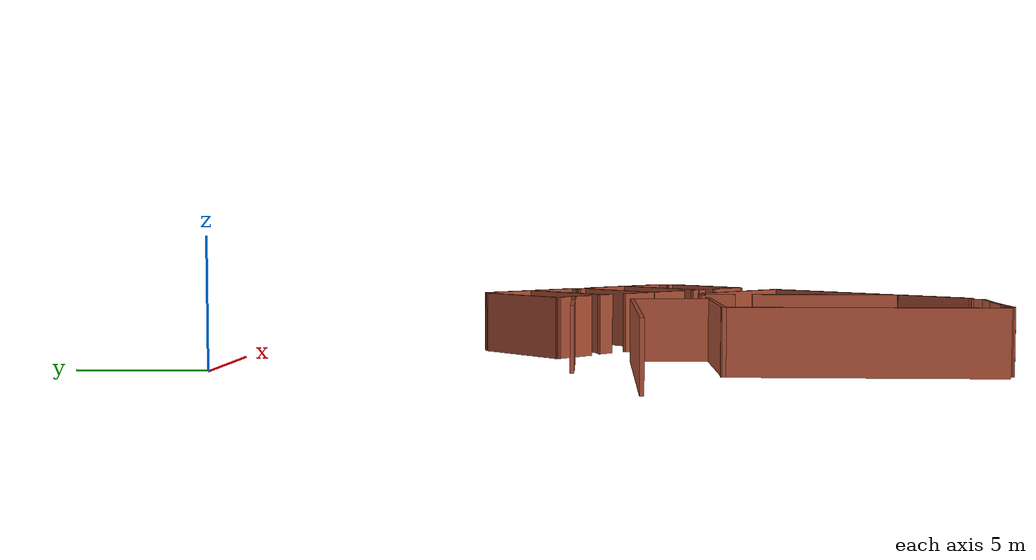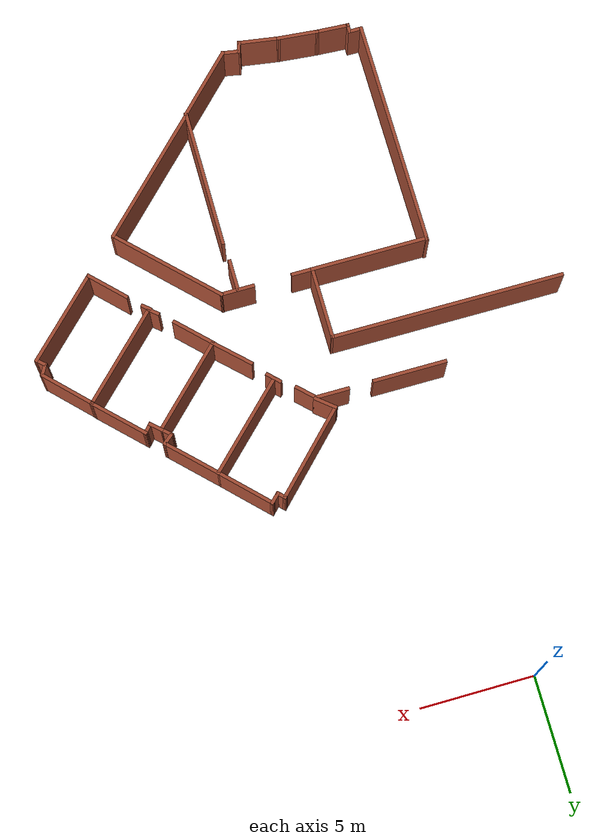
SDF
<?xml version='1.0'?>
<sdf version='1.7'>
  <model name='TI_n1'>
    <pose>5.33519 -14.8646 0 0 -0 0</pose>
    <link name='Wall_0'>
      <collision name='Wall_0_Collision'>
        <geometry>
          <box>
            <size>3.25 0.15 2.5</size>
          </box>
        </geometry>
        <pose>0 0 1.25 0 -0 0</pose>
      </collision>
      <visual name='Wall_0_Visual'>
        <pose>0 0 1.25 0 -0 0</pose>
        <geometry>
          <box>
            <size>3.25 0.15 2.5</size>
          </box>
        </geometry>
        <material>
          <script>
            <uri>file://media/materials/scripts/gazebo.material</uri>
            <name>Gazebo/Bricks</name>
          </script>
          <ambient>1 1 1 1</ambient>
        </material>
        <meta>
          <layer>0</layer>
        </meta>
      </visual>
      <pose>-3.79554 1.40085 0 0 -0 0</pose>
    </link>
    <link name='Wall_10'>
      <collision name='Wall_10_Collision'>
        <geometry>
          <box>
            <size>1.07285 0.15 2.5</size>
          </box>
        </geometry>
        <pose>0 0 1.25 0 -0 0</pose>
      </collision>
      <visual name='Wall_10_Visual'>
        <pose>0 0 1.25 0 -0 0</pose>
        <geometry>
          <box>
            <size>1.07285 0.15 2.5</size>
          </box>
        </geometry>
        <material>
          <script>
            <uri>file://media/materials/scripts/gazebo.material</uri>
            <name>Gazebo/Bricks</name>
          </script>
          <ambient>1 1 1 1</ambient>
        </material>
        <meta>
          <layer>0</layer>
        </meta>
      </visual>
      <pose>0.639444 1.09915 0 0 -0 -0.771818</pose>
    </link>
    <link name='Wall_12'>
      <collision name='Wall_12_Collision'>
        <geometry>
          <box>
            <size>0.75 0.15 2.5</size>
          </box>
        </geometry>
        <pose>0 0 1.25 0 -0 0</pose>
      </collision>
      <visual name='Wall_12_Visual'>
        <pose>0 0 1.25 0 -0 0</pose>
        <geometry>
          <box>
            <size>0.75 0.15 2.5</size>
          </box>
        </geometry>
        <material>
          <script>
            <uri>file://media/materials/scripts/gazebo.material</uri>
            <name>Gazebo/Bricks</name>
          </script>
          <ambient>1 1 1 1</ambient>
        </material>
        <meta>
          <layer>0</layer>
        </meta>
      </visual>
      <pose>1.78566 0.122703 0 0 -0 -0.785398</pose>
    </link>
    <link name='Wall_15'>
      <collision name='Wall_15_Collision'>
        <geometry>
          <box>
            <size>4.80093 0.15 2.5</size>
          </box>
        </geometry>
        <pose>0 0 1.25 0 -0 0</pose>
      </collision>
      <visual name='Wall_15_Visual'>
        <pose>0 0 1.25 0 -0 0</pose>
        <geometry>
          <box>
            <size>4.80093 0.15 2.5</size>
          </box>
        </geometry>
        <material>
          <script>
            <uri>file://media/materials/scripts/gazebo.material</uri>
            <name>Gazebo/Bricks</name>
          </script>
          <ambient>1 1 1 1</ambient>
        </material>
        <meta>
          <layer>0</layer>
        </meta>
      </visual>
      <pose>3.43404 1.78301 0 0 -0 0.776224</pose>
    </link>
    <link name='Wall_16'>
      <collision name='Wall_16_Collision'>
        <geometry>
          <box>
            <size>2.7243 0.15 2.5</size>
          </box>
        </geometry>
        <pose>0 0 1.25 0 -0 0</pose>
      </collision>
      <visual name='Wall_16_Visual'>
        <pose>0 0 1.25 0 -0 0</pose>
        <geometry>
          <box>
            <size>2.7243 0.15 2.5</size>
          </box>
        </geometry>
        <material>
          <script>
            <uri>file://media/materials/scripts/gazebo.material</uri>
            <name>Gazebo/Bricks</name>
          </script>
          <ambient>1 1 1 1</ambient>
        </material>
        <meta>
          <layer>0</layer>
        </meta>
      </visual>
      <pose>4.1883 4.32738 0 0 -0 2.35067</pose>
    </link>
    <link name='Wall_17'>
      <collision name='Wall_17_Collision'>
        <geometry>
          <box>
            <size>0.605118 0.15 2.5</size>
          </box>
        </geometry>
        <pose>0 0 1.25 0 -0 0</pose>
      </collision>
      <visual name='Wall_17_Visual'>
        <pose>0 0 1.25 0 -0 0</pose>
        <geometry>
          <box>
            <size>0.605118 0.15 2.5</size>
          </box>
        </geometry>
        <material>
          <script>
            <uri>file://media/materials/scripts/gazebo.material</uri>
            <name>Gazebo/Bricks</name>
          </script>
          <ambient>1 1 1 1</ambient>
        </material>
        <meta>
          <layer>0</layer>
        </meta>
      </visual>
      <pose>3.12228 5.08164 0 0 -0 -2.35619</pose>
    </link>
    <link name='Wall_18'>
      <collision name='Wall_18_Collision'>
        <geometry>
          <box>
            <size>0.491339 0.15 2.5</size>
          </box>
        </geometry>
        <pose>0 0 1.25 0 -0 0</pose>
      </collision>
      <visual name='Wall_18_Visual'>
        <pose>0 0 1.25 0 -0 0</pose>
        <geometry>
          <box>
            <size>0.491339 0.15 2.5</size>
          </box>
        </geometry>
        <material>
          <script>
            <uri>file://media/materials/scripts/gazebo.material</uri>
            <name>Gazebo/Bricks</name>
          </script>
          <ambient>1 1 1 1</ambient>
        </material>
        <meta>
          <layer>0</layer>
        </meta>
      </visual>
      <pose>2.84069 5.04141 0 0 -0 2.35619</pose>
    </link>
    <link name='Wall_19'>
      <collision name='Wall_19_Collision'>
        <geometry>
          <box>
            <size>4.53061 0.15 2.5</size>
          </box>
        </geometry>
        <pose>0 0 1.25 0 -0 0</pose>
      </collision>
      <visual name='Wall_19_Visual'>
        <pose>0 0 1.25 0 -0 0</pose>
        <geometry>
          <box>
            <size>4.53061 0.15 2.5</size>
          </box>
        </geometry>
        <material>
          <script>
            <uri>file://media/materials/scripts/gazebo.material</uri>
            <name>Gazebo/Bricks</name>
          </script>
          <ambient>1 1 1 1</ambient>
        </material>
        <meta>
          <layer>0</layer>
        </meta>
      </visual>
      <pose>1.18131 3.60329 0 0 -0 -2.3497</pose>
    </link>
    <link name='Wall_2'>
      <collision name='Wall_2_Collision'>
        <geometry>
          <box>
            <size>10.2672 0.15 2.5</size>
          </box>
        </geometry>
        <pose>0 0 1.25 0 -0 0</pose>
      </collision>
      <visual name='Wall_2_Visual'>
        <pose>0 0 1.25 0 -0 0</pose>
        <geometry>
          <box>
            <size>10.2672 0.15 2.5</size>
          </box>
        </geometry>
        <material>
          <script>
            <uri>file://media/materials/scripts/gazebo.material</uri>
            <name>Gazebo/Bricks</name>
          </script>
          <ambient>1 1 1 1</ambient>
        </material>
        <meta>
          <layer>0</layer>
        </meta>
      </visual>
      <pose>-6.14002 -0.90215 0 0 -0 -0.001988</pose>
    </link>
    <link name='Wall_20'>
      <collision name='Wall_20_Collision'>
        <geometry>
          <box>
            <size>1.06423 0.15 2.5</size>
          </box>
        </geometry>
        <pose>0 0 1.25 0 -0 0</pose>
      </collision>
      <visual name='Wall_20_Visual'>
        <pose>0 0 1.25 0 -0 0</pose>
        <geometry>
          <box>
            <size>1.06423 0.15 2.5</size>
          </box>
        </geometry>
        <material>
          <script>
            <uri>file://media/materials/scripts/gazebo.material</uri>
            <name>Gazebo/Bricks</name>
          </script>
          <ambient>1 1 1 1</ambient>
        </material>
        <meta>
          <layer>0</layer>
        </meta>
      </visual>
      <pose>-0.005385 1.75284 0 0 -0 -0.691921</pose>
    </link>
    <link name='Wall_22'>
      <collision name='Wall_22_Collision'>
        <geometry>
          <box>
            <size>2.71004 0.15 2.5</size>
          </box>
        </geometry>
        <pose>0 0 1.25 0 -0 0</pose>
      </collision>
      <visual name='Wall_22_Visual'>
        <pose>0 0 1.25 0 -0 0</pose>
        <geometry>
          <box>
            <size>2.71004 0.15 2.5</size>
          </box>
        </geometry>
        <material>
          <script>
            <uri>file://media/materials/scripts/gazebo.material</uri>
            <name>Gazebo/Bricks</name>
          </script>
          <ambient>1 1 1 1</ambient>
        </material>
        <meta>
          <layer>0</layer>
        </meta>
      </visual>
      <pose>5.99852 2.5071 0 0 -0 -0.785398</pose>
    </link>
    <link name='Wall_23'>
      <collision name='Wall_23_Collision'>
        <geometry>
          <box>
            <size>0.621276 0.15 2.5</size>
          </box>
        </geometry>
        <pose>0 0 1.25 0 -0 0</pose>
      </collision>
      <visual name='Wall_23_Visual'>
        <pose>0 0 1.25 0 -0 0</pose>
        <geometry>
          <box>
            <size>0.621276 0.15 2.5</size>
          </box>
        </geometry>
        <material>
          <script>
            <uri>file://media/materials/scripts/gazebo.material</uri>
            <name>Gazebo/Bricks</name>
          </script>
          <ambient>1 1 1 1</ambient>
        </material>
        <meta>
          <layer>0</layer>
        </meta>
      </visual>
      <pose>6.7226 1.45114 0 0 -0 -2.44685</pose>
    </link>
    <link name='Wall_24'>
      <collision name='Wall_24_Collision'>
        <geometry>
          <box>
            <size>0.634399 0.15 2.5</size>
          </box>
        </geometry>
        <pose>0 0 1.25 0 -0 0</pose>
      </collision>
      <visual name='Wall_24_Visual'>
        <pose>0 0 1.25 0 -0 0</pose>
        <geometry>
          <box>
            <size>0.634399 0.15 2.5</size>
          </box>
        </geometry>
        <material>
          <script>
            <uri>file://media/materials/scripts/gazebo.material</uri>
            <name>Gazebo/Bricks</name>
          </script>
          <ambient>1 1 1 1</ambient>
        </material>
        <meta>
          <layer>0</layer>
        </meta>
      </visual>
      <pose>6.7226 1.13938 0 0 -0 -0.726642</pose>
    </link>
    <link name='Wall_25'>
      <collision name='Wall_25_Collision'>
        <geometry>
          <box>
            <size>4.44527 0.15 2.5</size>
          </box>
        </geometry>
        <pose>0 0 1.25 0 -0 0</pose>
      </collision>
      <visual name='Wall_25_Visual'>
        <pose>0 0 1.25 0 -0 0</pose>
        <geometry>
          <box>
            <size>4.44527 0.15 2.5</size>
          </box>
        </geometry>
        <material>
          <script>
            <uri>file://media/materials/scripts/gazebo.material</uri>
            <name>Gazebo/Bricks</name>
          </script>
          <ambient>1 1 1 1</ambient>
        </material>
        <meta>
          <layer>0</layer>
        </meta>
      </visual>
      <pose>5.375 -0.530049 0 0 -0 -2.36282</pose>
    </link>
    <link name='Wall_26'>
      <collision name='Wall_26_Collision'>
        <geometry>
          <box>
            <size>1.99914 0.15 2.5</size>
          </box>
        </geometry>
        <pose>0 0 1.25 0 -0 0</pose>
      </collision>
      <visual name='Wall_26_Visual'>
        <pose>0 0 1.25 0 -0 0</pose>
        <geometry>
          <box>
            <size>1.99914 0.15 2.5</size>
          </box>
        </geometry>
        <material>
          <script>
            <uri>file://media/materials/scripts/gazebo.material</uri>
            <name>Gazebo/Bricks</name>
          </script>
          <ambient>1 1 1 1</ambient>
        </material>
        <meta>
          <layer>0</layer>
        </meta>
      </visual>
      <pose>3.18262 -1.39493 0 0 -0 2.37158</pose>
    </link>
    <link name='Wall_28'>
      <collision name='Wall_28_Collision'>
        <geometry>
          <box>
            <size>1.99892 0.15 2.5</size>
          </box>
        </geometry>
        <pose>0 0 1.25 0 -0 0</pose>
      </collision>
      <visual name='Wall_28_Visual'>
        <pose>0 0 1.25 0 -0 0</pose>
        <geometry>
          <box>
            <size>1.99892 0.15 2.5</size>
          </box>
        </geometry>
        <material>
          <script>
            <uri>file://media/materials/scripts/gazebo.material</uri>
            <name>Gazebo/Bricks</name>
          </script>
          <ambient>1 1 1 1</ambient>
        </material>
        <meta>
          <layer>0</layer>
        </meta>
      </visual>
      <pose>4.50005 -2.71237 0 0 -0 -0.785398</pose>
    </link>
    <link name='Wall_3'>
      <collision name='Wall_3_Collision'>
        <geometry>
          <box>
            <size>3.24756 0.15 2.5</size>
          </box>
        </geometry>
        <pose>0 0 1.25 0 -0 0</pose>
      </collision>
      <visual name='Wall_3_Visual'>
        <pose>0 0 1.25 0 -0 0</pose>
        <geometry>
          <box>
            <size>3.24756 0.15 2.5</size>
          </box>
        </geometry>
        <material>
          <script>
            <uri>file://media/materials/scripts/gazebo.material</uri>
            <name>Gazebo/Bricks</name>
          </script>
          <ambient>1 1 1 1</ambient>
        </material>
        <meta>
          <layer>0</layer>
        </meta>
      </visual>
      <pose>-1.08146 -2.46095 0 0 -0 -1.5708</pose>
    </link>
    <link name='Wall_31'>
      <collision name='Wall_31_Collision'>
        <geometry>
          <box>
            <size>0.691201 0.15 2.5</size>
          </box>
        </geometry>
        <pose>0 0 1.25 0 -0 0</pose>
      </collision>
      <visual name='Wall_31_Visual'>
        <pose>0 0 1.25 0 -0 0</pose>
        <geometry>
          <box>
            <size>0.691201 0.15 2.5</size>
          </box>
        </geometry>
        <material>
          <script>
            <uri>file://media/materials/scripts/gazebo.material</uri>
            <name>Gazebo/Bricks</name>
          </script>
          <ambient>1 1 1 1</ambient>
        </material>
        <meta>
          <layer>0</layer>
        </meta>
      </visual>
      <pose>7.08465 0.81756 0 0 -0 -0.732815</pose>
    </link>
    <link name='Wall_32'>
      <collision name='Wall_32_Collision'>
        <geometry>
          <box>
            <size>0.562696 0.15 2.5</size>
          </box>
        </geometry>
        <pose>0 0 1.25 0 -0 0</pose>
      </collision>
      <visual name='Wall_32_Visual'>
        <pose>0 0 1.25 0 -0 0</pose>
        <geometry>
          <box>
            <size>0.562696 0.15 2.5</size>
          </box>
        </geometry>
        <material>
          <script>
            <uri>file://media/materials/scripts/gazebo.material</uri>
            <name>Gazebo/Bricks</name>
          </script>
          <ambient>1 1 1 1</ambient>
        </material>
        <meta>
          <layer>0</layer>
        </meta>
      </visual>
      <pose>7.42658 0.78739 0 0 -0 0.819867</pose>
    </link>
    <link name='Wall_33'>
      <collision name='Wall_33_Collision'>
        <geometry>
          <box>
            <size>2.73848 0.15 2.5</size>
          </box>
        </geometry>
        <pose>0 0 1.25 0 -0 0</pose>
      </collision>
      <visual name='Wall_33_Visual'>
        <pose>0 0 1.25 0 -0 0</pose>
        <geometry>
          <box>
            <size>2.73848 0.15 2.5</size>
          </box>
        </geometry>
        <material>
          <script>
            <uri>file://media/materials/scripts/gazebo.material</uri>
            <name>Gazebo/Bricks</name>
          </script>
          <ambient>1 1 1 1</ambient>
        </material>
        <meta>
          <layer>0</layer>
        </meta>
      </visual>
      <pose>8.48254 0.023074 0 0 -0 -0.785398</pose>
    </link>
    <link name='Wall_34'>
      <collision name='Wall_34_Collision'>
        <geometry>
          <box>
            <size>4.84349 0.15 2.5</size>
          </box>
        </geometry>
        <pose>0 0 1.25 0 -0 0</pose>
      </collision>
      <visual name='Wall_34_Visual'>
        <pose>0 0 1.25 0 -0 0</pose>
        <geometry>
          <box>
            <size>4.84349 0.15 2.5</size>
          </box>
        </geometry>
        <material>
          <script>
            <uri>file://media/materials/scripts/gazebo.material</uri>
            <name>Gazebo/Bricks</name>
          </script>
          <ambient>1 1 1 1</ambient>
        </material>
        <meta>
          <layer>0</layer>
        </meta>
      </visual>
      <pose>7.72828 -2.54141 0 0 -0 -2.36226</pose>
    </link>
    <link name='Wall_35'>
      <collision name='Wall_35_Collision'>
        <geometry>
          <box>
            <size>0.57762 0.15 2.5</size>
          </box>
        </geometry>
        <pose>0 0 1.25 0 -0 0</pose>
      </collision>
      <visual name='Wall_35_Visual'>
        <pose>0 0 1.25 0 -0 0</pose>
        <geometry>
          <box>
            <size>0.57762 0.15 2.5</size>
          </box>
        </geometry>
        <material>
          <script>
            <uri>file://media/materials/scripts/gazebo.material</uri>
            <name>Gazebo/Bricks</name>
          </script>
          <ambient>1 1 1 1</ambient>
        </material>
        <meta>
          <layer>0</layer>
        </meta>
      </visual>
      <pose>5.89795 -4.04992 0 0 -0 2.42276</pose>
    </link>
    <link name='Wall_37'>
      <collision name='Wall_37_Collision'>
        <geometry>
          <box>
            <size>0.492522 0.15 2.5</size>
          </box>
        </geometry>
        <pose>0 0 1.25 0 -0 0</pose>
      </collision>
      <visual name='Wall_37_Visual'>
        <pose>0 0 1.25 0 -0 0</pose>
        <geometry>
          <box>
            <size>0.492522 0.15 2.5</size>
          </box>
        </geometry>
        <material>
          <script>
            <uri>file://media/materials/scripts/gazebo.material</uri>
            <name>Gazebo/Bricks</name>
          </script>
          <ambient>1 1 1 1</ambient>
        </material>
        <meta>
          <layer>0</layer>
        </meta>
      </visual>
      <pose>6.12925 -4.30134 0 0 -0 -0.702257</pose>
    </link>
    <link name='Wall_39'>
      <collision name='Wall_39_Collision'>
        <geometry>
          <box>
            <size>2.56798 0.15 2.5</size>
          </box>
        </geometry>
        <pose>0 0 1.25 0 -0 0</pose>
      </collision>
      <visual name='Wall_39_Visual'>
        <pose>0 0 1.25 0 -0 0</pose>
        <geometry>
          <box>
            <size>2.56798 0.15 2.5</size>
          </box>
        </geometry>
        <material>
          <script>
            <uri>file://media/materials/scripts/gazebo.material</uri>
            <name>Gazebo/Bricks</name>
          </script>
          <ambient>1 1 1 1</ambient>
        </material>
        <meta>
          <layer>0</layer>
        </meta>
      </visual>
      <pose>10.2425 -1.77709 0 0 -0 -0.797162</pose>
    </link>
    <link name='Wall_4'>
      <collision name='Wall_4_Collision'>
        <geometry>
          <box>
            <size>1 0.15 2.5</size>
          </box>
        </geometry>
        <pose>0 0 1.25 0 -0 0</pose>
      </collision>
      <visual name='Wall_4_Visual'>
        <pose>0 0 1.25 0 -0 0</pose>
        <geometry>
          <box>
            <size>1 0.15 2.5</size>
          </box>
        </geometry>
        <material>
          <script>
            <uri>file://media/materials/scripts/gazebo.material</uri>
            <name>Gazebo/Bricks</name>
          </script>
          <ambient>1 1 1 1</ambient>
        </material>
        <meta>
          <layer>0</layer>
        </meta>
      </visual>
      <pose>-0.656461 -4.0097 0 0 -0 0</pose>
    </link>
    <link name='Wall_40'>
      <collision name='Wall_40_Collision'>
        <geometry>
          <box>
            <size>0.626823 0.15 2.5</size>
          </box>
        </geometry>
        <pose>0 0 1.25 0 -0 0</pose>
      </collision>
      <visual name='Wall_40_Visual'>
        <pose>0 0 1.25 0 -0 0</pose>
        <geometry>
          <box>
            <size>0.626823 0.15 2.5</size>
          </box>
        </geometry>
        <material>
          <script>
            <uri>file://media/materials/scripts/gazebo.material</uri>
            <name>Gazebo/Bricks</name>
          </script>
          <ambient>1 1 1 1</ambient>
        </material>
        <meta>
          <layer>0</layer>
        </meta>
      </visual>
      <pose>10.9766 -2.85317 0 0 -0 -2.05331</pose>
    </link>
    <link name='Wall_41'>
      <collision name='Wall_41_Collision'>
        <geometry>
          <box>
            <size>0.549243 0.15 2.5</size>
          </box>
        </geometry>
        <pose>0 0 1.25 0 -0 0</pose>
      </collision>
      <visual name='Wall_41_Visual'>
        <pose>0 0 1.25 0 -0 0</pose>
        <geometry>
          <box>
            <size>0.549243 0.15 2.5</size>
          </box>
        </geometry>
        <material>
          <script>
            <uri>file://media/materials/scripts/gazebo.material</uri>
            <name>Gazebo/Bricks</name>
          </script>
          <ambient>1 1 1 1</ambient>
        </material>
        <meta>
          <layer>0</layer>
        </meta>
      </visual>
      <pose>11.0169 -3.1951 0 0 -0 -0.714091</pose>
    </link>
    <link name='Wall_42'>
      <collision name='Wall_42_Collision'>
        <geometry>
          <box>
            <size>4.41683 0.15 2.5</size>
          </box>
        </geometry>
        <pose>0 0 1.25 0 -0 0</pose>
      </collision>
      <visual name='Wall_42_Visual'>
        <pose>0 0 1.25 0 -0 0</pose>
        <geometry>
          <box>
            <size>4.41683 0.15 2.5</size>
          </box>
        </geometry>
        <material>
          <script>
            <uri>file://media/materials/scripts/gazebo.material</uri>
            <name>Gazebo/Bricks</name>
          </script>
          <ambient>1 1 1 1</ambient>
        </material>
        <meta>
          <layer>0</layer>
        </meta>
      </visual>
      <pose>9.64913 -4.8243 0 0 -0 -2.36286</pose>
    </link>
    <link name='Wall_43'>
      <collision name='Wall_43_Collision'>
        <geometry>
          <box>
            <size>2.01319 0.15 2.5</size>
          </box>
        </geometry>
        <pose>0 0 1.25 0 -0 0</pose>
      </collision>
      <visual name='Wall_43_Visual'>
        <pose>0 0 1.25 0 -0 0</pose>
        <geometry>
          <box>
            <size>2.01319 0.15 2.5</size>
          </box>
        </geometry>
        <material>
          <script>
            <uri>file://media/materials/scripts/gazebo.material</uri>
            <name>Gazebo/Bricks</name>
          </script>
          <ambient>1 1 1 1</ambient>
        </material>
        <meta>
          <layer>0</layer>
        </meta>
      </visual>
      <pose>7.47686 -5.65901 0 0 -0 2.34856</pose>
    </link>
    <link name='Wall_45'>
      <collision name='Wall_45_Collision'>
        <geometry>
          <box>
            <size>5.21866 0.15 2.5</size>
          </box>
        </geometry>
        <pose>0 0 1.25 0 -0 0</pose>
      </collision>
      <visual name='Wall_45_Visual'>
        <pose>0 0 1.25 0 -0 0</pose>
        <geometry>
          <box>
            <size>5.21866 0.15 2.5</size>
          </box>
        </geometry>
        <material>
          <script>
            <uri>file://media/materials/scripts/gazebo.material</uri>
            <name>Gazebo/Bricks</name>
          </script>
          <ambient>1 1 1 1</ambient>
        </material>
        <meta>
          <layer>0</layer>
        </meta>
      </visual>
      <pose>-3.61577 -4.0097 0 0 -0 3.14159</pose>
    </link>
    <link name='Wall_47'>
      <collision name='Wall_47_Collision'>
        <geometry>
          <box>
            <size>10.1465 0.15 2.5</size>
          </box>
        </geometry>
        <pose>0 0 1.25 0 -0 0</pose>
      </collision>
      <visual name='Wall_47_Visual'>
        <pose>0 0 1.25 0 -0 0</pose>
        <geometry>
          <box>
            <size>10.1465 0.15 2.5</size>
          </box>
        </geometry>
        <material>
          <script>
            <uri>file://media/materials/scripts/gazebo.material</uri>
            <name>Gazebo/Bricks</name>
          </script>
          <ambient>1 1 1 1</ambient>
        </material>
        <meta>
          <layer>0</layer>
        </meta>
      </visual>
      <pose>-6.15008 -8.96769 0 0 -0 -1.5708</pose>
    </link>
    <link name='Wall_48'>
      <collision name='Wall_48_Collision'>
        <geometry>
          <box>
            <size>0.672953 0.15 2.5</size>
          </box>
        </geometry>
        <pose>0 0 1.25 0 -0 0</pose>
      </collision>
      <visual name='Wall_48_Visual'>
        <pose>0 0 1.25 0 -0 0</pose>
        <geometry>
          <box>
            <size>0.672953 0.15 2.5</size>
          </box>
        </geometry>
        <material>
          <script>
            <uri>file://media/materials/scripts/gazebo.material</uri>
            <name>Gazebo/Bricks</name>
          </script>
          <ambient>1 1 1 1</ambient>
        </material>
        <meta>
          <layer>0</layer>
        </meta>
      </visual>
      <pose>-5.88861 -13.9659 0 0 -0 0</pose>
    </link>
    <link name='Wall_49'>
      <collision name='Wall_49_Collision'>
        <geometry>
          <box>
            <size>0.451704 0.15 2.5</size>
          </box>
        </geometry>
        <pose>0 0 1.25 0 -0 0</pose>
      </collision>
      <visual name='Wall_49_Visual'>
        <pose>0 0 1.25 0 -0 0</pose>
        <geometry>
          <box>
            <size>0.451704 0.15 2.5</size>
          </box>
        </geometry>
        <material>
          <script>
            <uri>file://media/materials/scripts/gazebo.material</uri>
            <name>Gazebo/Bricks</name>
          </script>
          <ambient>1 1 1 1</ambient>
        </material>
        <meta>
          <layer>0</layer>
        </meta>
      </visual>
      <pose>-5.62713 -14.1168 0 0 -0 -1.5708</pose>
    </link>
    <link name='Wall_50'>
      <collision name='Wall_50_Collision'>
        <geometry>
          <box>
            <size>1.52009 0.15 2.5</size>
          </box>
        </geometry>
        <pose>0 0 1.25 0 -0 0</pose>
      </collision>
      <visual name='Wall_50_Visual'>
        <pose>0 0 1.25 0 -0 0</pose>
        <geometry>
          <box>
            <size>1.52009 0.15 2.5</size>
          </box>
        </geometry>
        <material>
          <script>
            <uri>file://media/materials/scripts/gazebo.material</uri>
            <name>Gazebo/Bricks</name>
          </script>
          <ambient>1 1 1 1</ambient>
        </material>
        <meta>
          <layer>0</layer>
        </meta>
      </visual>
      <pose>-4.94327 -14.3078 0 0 -0 -0.058756</pose>
    </link>
    <link name='Wall_51'>
      <collision name='Wall_51_Collision'>
        <geometry>
          <box>
            <size>1.86721 0.15 2.5</size>
          </box>
        </geometry>
        <pose>0 0 1.25 0 -0 0</pose>
      </collision>
      <visual name='Wall_51_Visual'>
        <pose>0 0 1.25 0 -0 0</pose>
        <geometry>
          <box>
            <size>1.86721 0.15 2.5</size>
          </box>
        </geometry>
        <material>
          <script>
            <uri>file://media/materials/scripts/gazebo.material</uri>
            <name>Gazebo/Bricks</name>
          </script>
          <ambient>1 1 1 1</ambient>
        </material>
        <meta>
          <layer>0</layer>
        </meta>
      </visual>
      <pose>-3.40458 -14.4285 0 0 -0 -0.093841</pose>
    </link>
    <link name='Wall_52'>
      <collision name='Wall_52_Collision'>
        <geometry>
          <box>
            <size>1.87953 0.15 2.5</size>
          </box>
        </geometry>
        <pose>0 0 1.25 0 -0 0</pose>
      </collision>
      <visual name='Wall_52_Visual'>
        <pose>0 0 1.25 0 -0 0</pose>
        <geometry>
          <box>
            <size>1.87953 0.15 2.5</size>
          </box>
        </geometry>
        <material>
          <script>
            <uri>file://media/materials/scripts/gazebo.material</uri>
            <name>Gazebo/Bricks</name>
          </script>
          <ambient>1 1 1 1</ambient>
        </material>
        <meta>
          <layer>0</layer>
        </meta>
      </visual>
      <pose>-1.69493 -14.6397 0 0 -0 -0.151765</pose>
    </link>
    <link name='Wall_53'>
      <collision name='Wall_53_Collision'>
        <geometry>
          <box>
            <size>0.55076 0.15 2.5</size>
          </box>
        </geometry>
        <pose>0 0 1.25 0 -0 0</pose>
      </collision>
      <visual name='Wall_53_Visual'>
        <pose>0 0 1.25 0 -0 0</pose>
        <geometry>
          <box>
            <size>0.55076 0.15 2.5</size>
          </box>
        </geometry>
        <material>
          <script>
            <uri>file://media/materials/scripts/gazebo.material</uri>
            <name>Gazebo/Bricks</name>
          </script>
          <ambient>1 1 1 1</ambient>
        </material>
        <meta>
          <layer>0</layer>
        </meta>
      </visual>
      <pose>-0.779758 -14.5794 0 0 -0 1.26492</pose>
    </link>
    <link name='Wall_54'>
      <collision name='Wall_54_Collision'>
        <geometry>
          <box>
            <size>0.844428 0.15 2.5</size>
          </box>
        </geometry>
        <pose>0 0 1.25 0 -0 0</pose>
      </collision>
      <visual name='Wall_54_Visual'>
        <pose>0 0 1.25 0 -0 0</pose>
        <geometry>
          <box>
            <size>0.844428 0.15 2.5</size>
          </box>
        </geometry>
        <material>
          <script>
            <uri>file://media/materials/scripts/gazebo.material</uri>
            <name>Gazebo/Bricks</name>
          </script>
          <ambient>1 1 1 1</ambient>
        </material>
        <meta>
          <layer>0</layer>
        </meta>
      </visual>
      <pose>-0.377486 -14.4486 0 0 -0 -0.174672</pose>
    </link>
    <link name='Wall_55'>
      <collision name='Wall_55_Collision'>
        <geometry>
          <box>
            <size>3.37853 0.15 2.5</size>
          </box>
        </geometry>
        <pose>0 0 1.25 0 -0 0</pose>
      </collision>
      <visual name='Wall_55_Visual'>
        <pose>0 0 1.25 0 -0 0</pose>
        <geometry>
          <box>
            <size>3.37853 0.15 2.5</size>
          </box>
        </geometry>
        <material>
          <script>
            <uri>file://media/materials/scripts/gazebo.material</uri>
            <name>Gazebo/Bricks</name>
          </script>
          <ambient>1 1 1 1</ambient>
        </material>
        <meta>
          <layer>0</layer>
        </meta>
      </visual>
      <pose>1.10086 -13.3625 0 0 -0 0.789803</pose>
    </link>
    <link name='Wall_56'>
      <collision name='Wall_56_Collision'>
        <geometry>
          <box>
            <size>6.1841 0.15 2.5</size>
          </box>
        </geometry>
        <pose>0 0 1.25 0 -0 0</pose>
      </collision>
      <visual name='Wall_56_Visual'>
        <pose>0 0 1.25 0 -0 0</pose>
        <geometry>
          <box>
            <size>6.1841 0.15 2.5</size>
          </box>
        </geometry>
        <material>
          <script>
            <uri>file://media/materials/scripts/gazebo.material</uri>
            <name>Gazebo/Bricks</name>
          </script>
          <ambient>1 1 1 1</ambient>
        </material>
        <meta>
          <layer>0</layer>
        </meta>
      </visual>
      <pose>2.24734 -9.199 0 0 -0 1.56746</pose>
    </link>
    <link name='Wall_58'>
      <collision name='Wall_58_Collision'>
        <geometry>
          <box>
            <size>1.41715 0.15 2.5</size>
          </box>
        </geometry>
        <pose>0 0 1.25 0 -0 0</pose>
      </collision>
      <visual name='Wall_58_Visual'>
        <pose>0 0 1.25 0 -0 0</pose>
        <geometry>
          <box>
            <size>1.41715 0.15 2.5</size>
          </box>
        </geometry>
        <material>
          <script>
            <uri>file://media/materials/scripts/gazebo.material</uri>
            <name>Gazebo/Bricks</name>
          </script>
          <ambient>1 1 1 1</ambient>
        </material>
        <meta>
          <layer>0</layer>
        </meta>
      </visual>
      <pose>2.19705 -4.66339 0 0 -0 1.5708</pose>
    </link>
    <link name='Wall_60'>
      <collision name='Wall_60_Collision'>
        <geometry>
          <box>
            <size>1.53784 0.15 2.5</size>
          </box>
        </geometry>
        <pose>0 0 1.25 0 -0 0</pose>
      </collision>
      <visual name='Wall_60_Visual'>
        <pose>0 0 1.25 0 -0 0</pose>
        <geometry>
          <box>
            <size>1.53784 0.15 2.5</size>
          </box>
        </geometry>
        <material>
          <script>
            <uri>file://media/materials/scripts/gazebo.material</uri>
            <name>Gazebo/Bricks</name>
          </script>
          <ambient>1 1 1 1</ambient>
        </material>
        <meta>
          <layer>0</layer>
        </meta>
      </visual>
      <pose>2.22722 -3.98958 0 0 -0 0</pose>
    </link>
    <link name='Wall_61'>
      <collision name='Wall_61_Collision'>
        <geometry>
          <box>
            <size>5.45499 0.15 2.5</size>
          </box>
        </geometry>
        <pose>0 0 1.25 0 -0 0</pose>
      </collision>
      <visual name='Wall_61_Visual'>
        <pose>0 0 1.25 0 -0 0</pose>
        <geometry>
          <box>
            <size>5.45499 0.15 2.5</size>
          </box>
        </geometry>
        <material>
          <script>
            <uri>file://media/materials/scripts/gazebo.material</uri>
            <name>Gazebo/Bricks</name>
          </script>
          <ambient>1 1 1 1</ambient>
        </material>
        <meta>
          <layer>0</layer>
        </meta>
      </visual>
      <pose>4.7917 -5.8702 0 0 -0 -0.788079</pose>
    </link>
    <link name='Wall_62'>
      <collision name='Wall_62_Collision'>
        <geometry>
          <box>
            <size>6.3795 0.15 2.5</size>
          </box>
        </geometry>
        <pose>0 0 1.25 0 -0 0</pose>
      </collision>
      <visual name='Wall_62_Visual'>
        <pose>0 0 1.25 0 -0 0</pose>
        <geometry>
          <box>
            <size>6.3795 0.15 2.5</size>
          </box>
        </geometry>
        <material>
          <script>
            <uri>file://media/materials/scripts/gazebo.material</uri>
            <name>Gazebo/Bricks</name>
          </script>
          <ambient>1 1 1 1</ambient>
        </material>
        <meta>
          <layer>0</layer>
        </meta>
      </visual>
      <pose>4.45983 -9.95326 0 0 -0 -2.35619</pose>
    </link>
    <link name='Wall_9'>
      <collision name='Wall_9_Collision'>
        <geometry>
          <box>
            <size>1.58045 0.15 2.5</size>
          </box>
        </geometry>
        <pose>0 0 1.25 0 -0 0</pose>
      </collision>
      <visual name='Wall_9_Visual'>
        <pose>0 0 1.25 0 -0 0</pose>
        <geometry>
          <box>
            <size>1.58045 0.15 2.5</size>
          </box>
        </geometry>
        <material>
          <script>
            <uri>file://media/materials/scripts/gazebo.material</uri>
            <name>Gazebo/Bricks</name>
          </script>
          <ambient>1 1 1 1</ambient>
        </material>
        <meta>
          <layer>0</layer>
        </meta>
      </visual>
      <pose>-0.366234 1.42097 0 0 -0 0</pose>
    </link>
    <static>1</static>
  </model>
</sdf>
